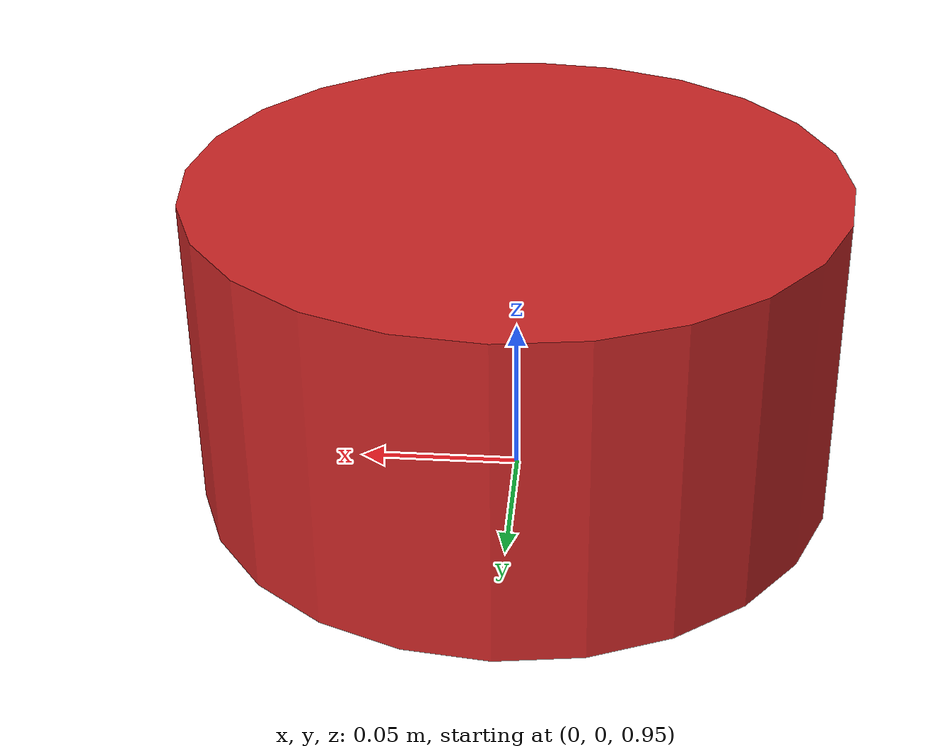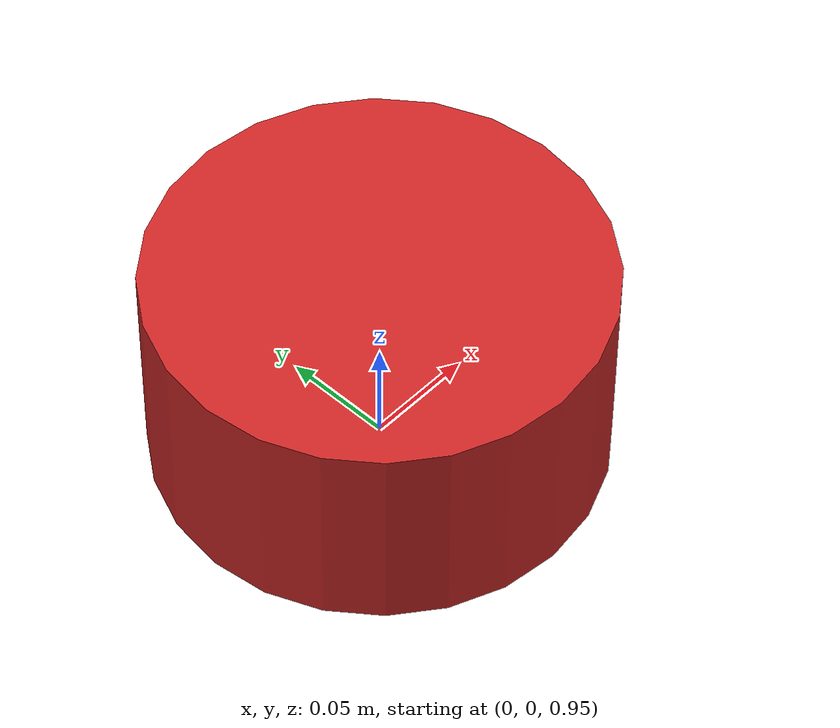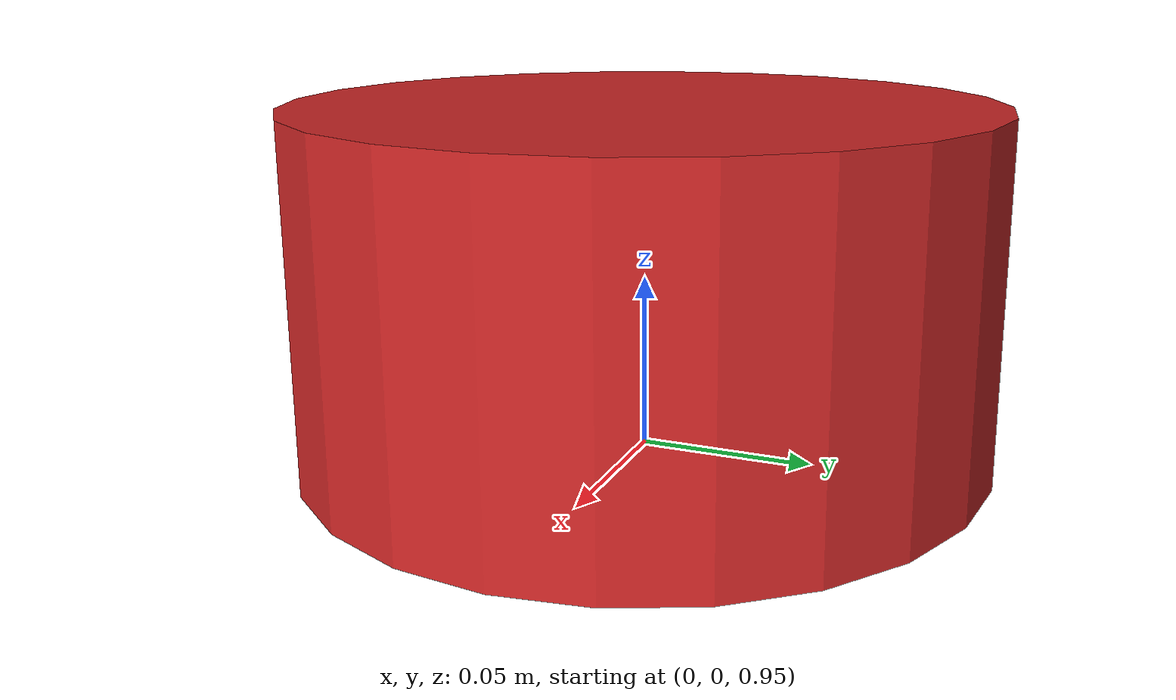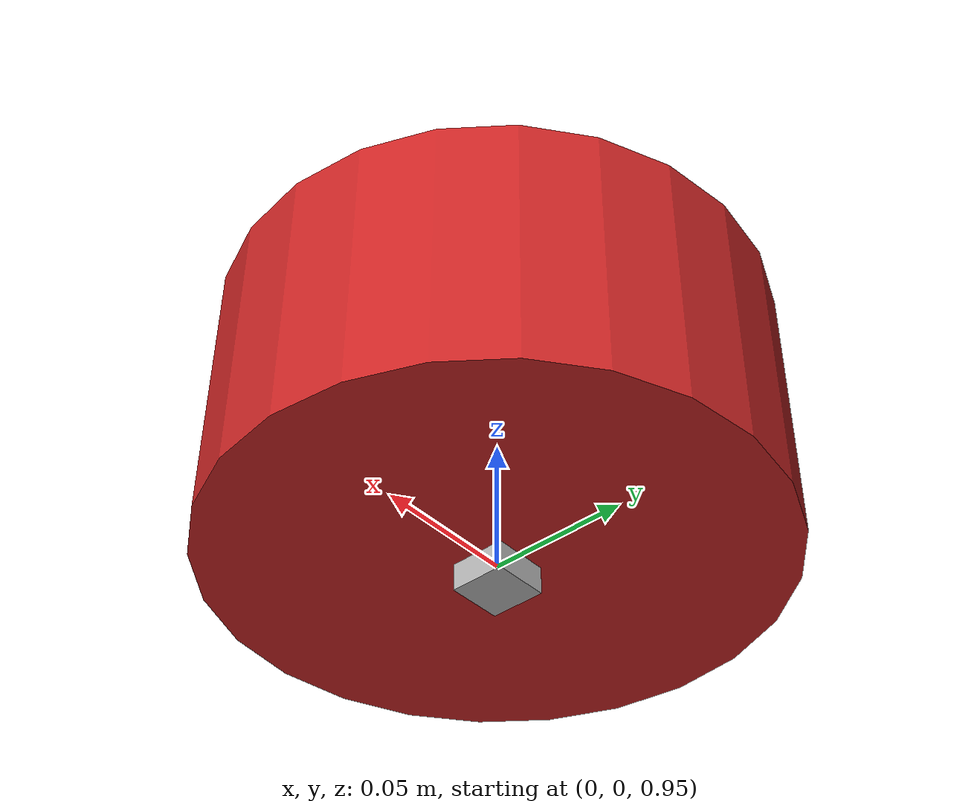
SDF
<?xml version="1.0"?>
<sdf version="1.6">
  <model name="quadrotor">
    <pose>0 0 1 0 0 0</pose>

    <link name="base_link">
      <inertial>
        <mass>1.0</mass>
        <inertia>
          <ixx>0.029125</ixx>
          <iyy>0.029125</iyy>
          <izz>0.055225</izz>
        </inertia>
      </inertial>

      <collision name="collision">
        <geometry>
          <cylinder>
            <radius>0.1</radius>
            <length>0.1</length>
          </cylinder>
        </geometry>
      </collision>

      <visual name="visual">
        <geometry>
          <cylinder>
            <radius>0.1</radius>
            <length>0.1</length>
          </cylinder>
        </geometry>
        <material>
          <script>
            <uri>file://media/materials/scripts/gazebo.material</uri>
            <name>Gazebo/Red</name>
          </script>
        </material>
      </visual>

      <!-- Downward-facing camera (without ROS plugin) -->
      <sensor name="camera" type="camera">
        <camera>
          <horizontal_fov>1.047</horizontal_fov>
          <image>
            <width>640</width>
            <height>480</height>
          </image>
          <clip>
            <near>0.05</near>
            <far>10</far>
          </clip>
        </camera>
        <always_on>1</always_on>
        <update_rate>30</update_rate>
        <visualize>true</visualize>
      </sensor>
    </link>

    <!-- Camera link (pointing down) -->
    <link name="camera_link">
      <pose>0 0 -0.05 0 1.5708 0</pose>
      <visual name="visual">
        <geometry>
          <box>
            <size>0.02 0.02 0.02</size>
          </box>
        </geometry>
      </visual>
    </link>

    <joint name="camera_joint" type="fixed">
      <parent>base_link</parent>
      <child>camera_link</child>
    </joint>

  </model>
</sdf>
